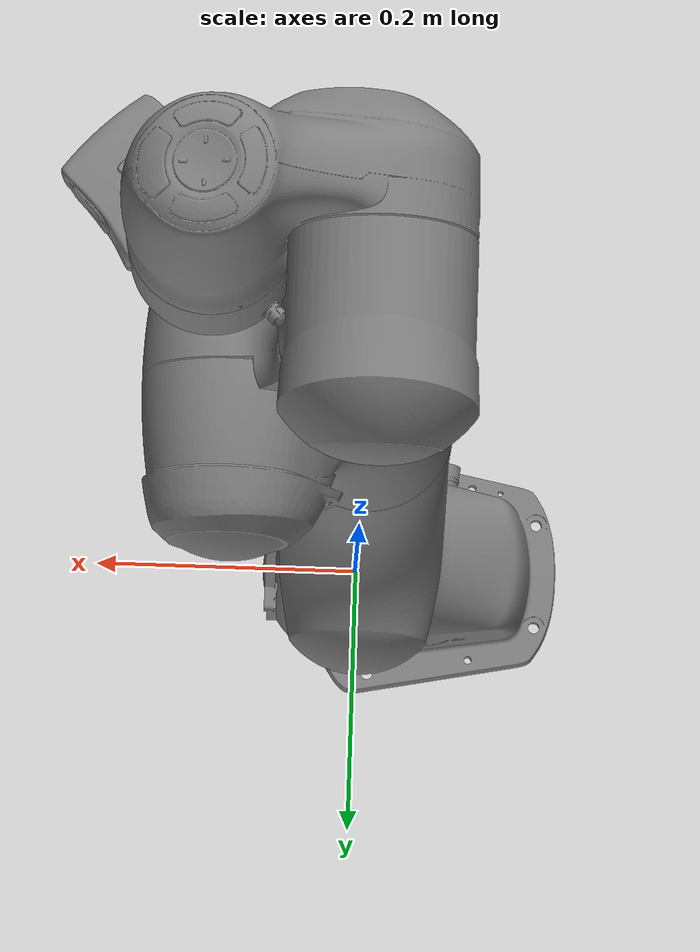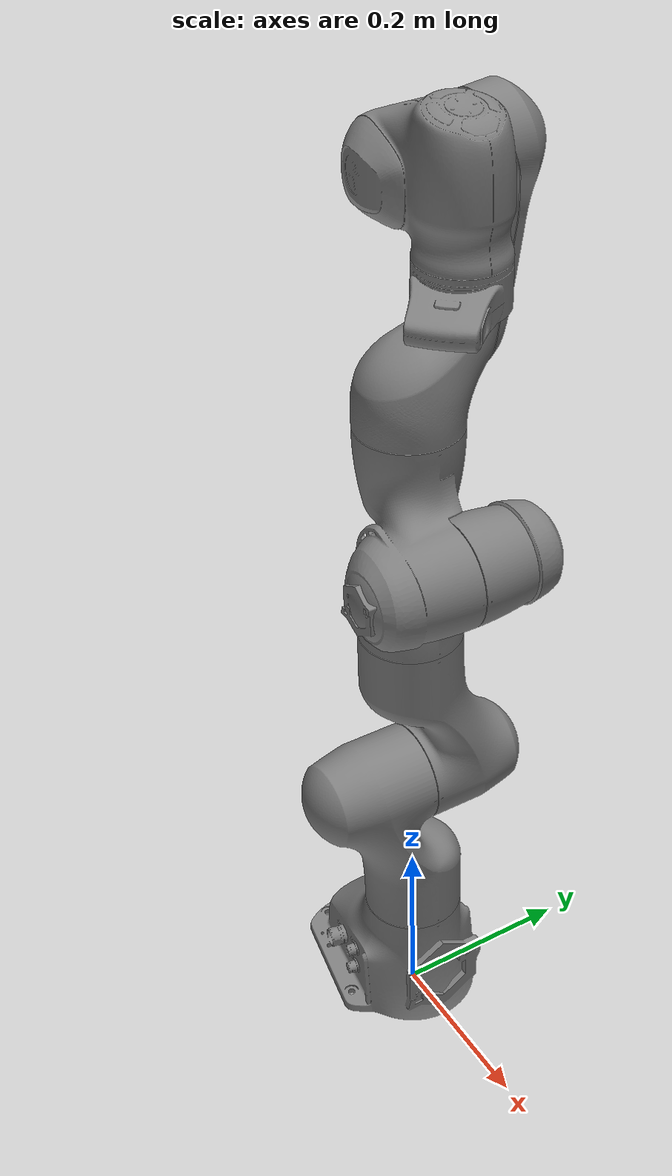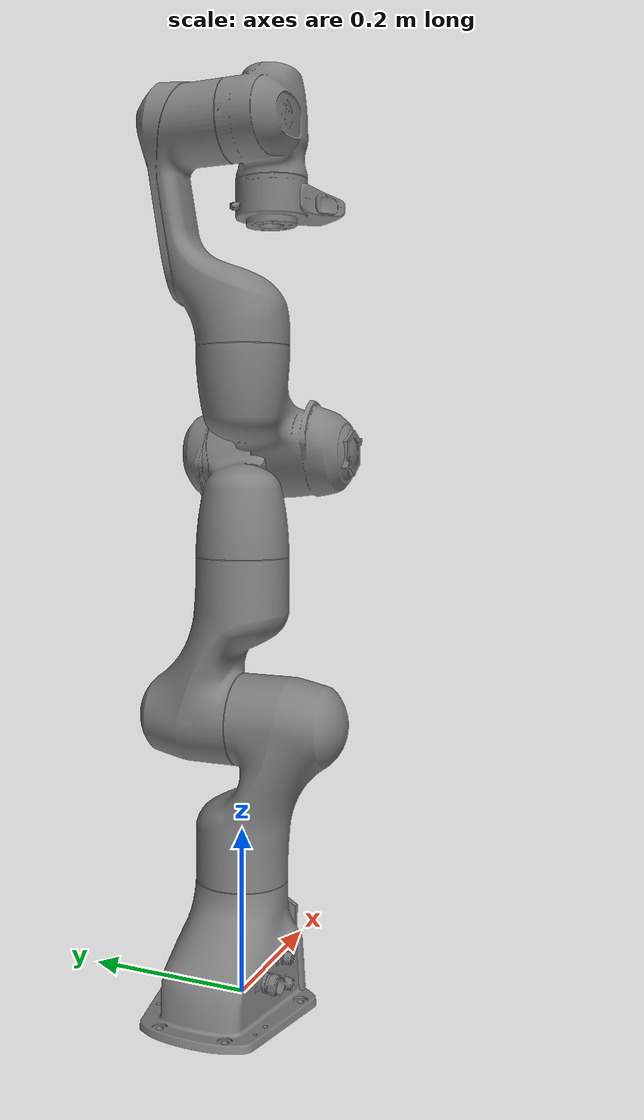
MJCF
<mujoco model="panda">
  <compiler angle="radian" meshdir="../meshes/visual/"/>
  <asset>
    <mesh name="link0" file="link0.stl"/>
    <mesh name="link1" file="link1.stl"/>
    <mesh name="link2" file="link2.stl"/>
    <mesh name="link3" file="link3.stl"/>
    <mesh name="link4" file="link4.stl"/>
    <mesh name="link5" file="link5.stl"/>
    <mesh name="link6" file="link6.stl"/>
    <mesh name="link7" file="link7.stl"/>
  </asset>
  <worldbody>
    <geom type="mesh" contype="0" conaffinity="0" group="1" density="0" mesh="link0"/>
    <geom type="mesh" mesh="link0"/>
    <body name="panda_link1" pos="0 0 0.333">
      <inertial pos="0.003875 0.002081 -0.175" quat="0.711549 0.00634377 -0.0131124 0.702485" mass="4.97068" diaginertia="0.707137 0.703435 0.00852456"/>
      <joint name="panda_joint1" pos="0 0 0" axis="0 0 1" limited="true" range="-2.8973 2.8973" damping="10" frictionloss="5"/>
      <geom type="mesh" contype="0" conaffinity="0" group="1" density="0" mesh="link1"/>
      <geom type="mesh" mesh="link1"/>
      <body name="panda_link2" quat="0.707107 -0.707107 0 0">
        <inertial pos="-0.003141 -0.02872 0.003495" quat="-0.168175 0.828366 -0.122878 0.520027" mass="0.646926" diaginertia="0.0310326 0.0283001 0.00273425"/>
        <joint name="panda_joint2" pos="0 0 0" axis="0 0 1" limited="true" range="-1.7628 1.7628" damping="5" frictionloss="2"/>
        <geom type="mesh" contype="0" conaffinity="0" group="1" density="0" mesh="link2"/>
        <geom type="mesh" mesh="link2"/>
        <body name="panda_link3" pos="0 -0.316 0" quat="0.707107 0.707107 0 0">
          <inertial pos="0.027518 0.039252 -0.066502" quat="0.662769 -0.00678331 0.252053 0.705096" mass="3.2286" diaginertia="0.0415014 0.0414793 0.00124635"/>
          <joint name="panda_joint3" pos="0 0 0" axis="0 0 1" limited="true" range="-2.8973 2.8973" damping="5" frictionloss="2"/>
          <geom type="mesh" contype="0" conaffinity="0" group="1" density="0" mesh="link3"/>
          <geom type="mesh" mesh="link3"/>
          <body name="panda_link4" pos="0.0825 0 0" quat="0.707107 0.707107 0 0">
            <inertial pos="-0.05317 0.104419 0.027454" quat="0.65058 0.529822 -0.0962034 0.535518" mass="3.5879" diaginertia="0.0349596 0.0281483 0.0106201"/>
            <joint name="panda_joint4" pos="0 0 0" axis="0 0 1" limited="true" range="-3.0718 -0.0698" damping="1" frictionloss="0.5"/>
            <geom type="mesh" contype="0" conaffinity="0" group="1" density="0" mesh="link4"/>
            <geom type="mesh" mesh="link4"/>
            <body name="panda_link5" pos="-0.0825 0.384 0" quat="0.707107 -0.707107 0 0">
              <inertial pos="-0.011953 0.041065 -0.038437" quat="0.987313 -0.0121954 0.0719187 -0.141037" mass="1.22595" diaginertia="0.0367625 0.0288531 0.00803437"/>
              <joint name="panda_joint5" pos="0 0 0" axis="0 0 1" limited="true" range="-2.8973 2.8973" damping="2" frictionloss="1"/>
              <geom type="mesh" contype="0" conaffinity="0" group="1" density="0" mesh="link5"/>
              <geom type="mesh" mesh="link5"/>
              <body name="panda_link6" quat="0.707107 0.707107 0 0">
                <inertial pos="0.060149 -0.014117 -0.010517" quat="0.101075 0.59332 0.0287227 0.798079" mass="1.66656" diaginertia="0.00584276 0.00431037 0.00159787"/>
                <joint name="panda_joint6" pos="0 0 0" axis="0 0 1" limited="true" range="-0.0175 3.7525" damping="1" frictionloss="0.5"/>
                <geom type="mesh" contype="0" conaffinity="0" group="1" density="0" mesh="link6"/>
                <geom type="mesh" mesh="link6"/>
                <body name="panda_link7" pos="0.088 0 0" quat="0.707107 0.707107 0 0">
                  <inertial pos="0.010517 -0.004252 0.061597" quat="0.992939 -0.0762041 0.0733595 -0.0537067" mass="0.735522" diaginertia="0.0127345 0.0101055 0.00451803"/>
                  <joint name="panda_joint7" pos="0 0 0" axis="0 0 1" limited="true" range="-2.8973 2.8973" damping="1" frictionloss="0.5"/>
                  <geom type="mesh" contype="0" conaffinity="0" group="1" density="0" mesh="link7"/>
                  <geom type="mesh" mesh="link7"/>
                </body>
              </body>
            </body>
          </body>
        </body>
      </body>
    </body>
  </worldbody>
  <!-- Additional configuration -->
  <include file="panda_arm_config_mjcf.xml"></include>
</mujoco>

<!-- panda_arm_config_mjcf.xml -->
<mujoco>
  <option timestep="0.008"/>
  <actuator>
    <motor name="motor1" joint="panda_joint1" gear="1"/>
    <motor name="motor2" joint="panda_joint2" gear="1"/>
    <motor name="motor3" joint="panda_joint3" gear="1"/>
    <motor name="motor4" joint="panda_joint4" gear="1"/>
    <motor name="motor5" joint="panda_joint5" gear="1"/>
    <motor name="motor6" joint="panda_joint6" gear="1"/>
    <motor name="motor7" joint="panda_joint7" gear="1"/>
  </actuator>
  <worldbody>
  </worldbody>
</mujoco>
